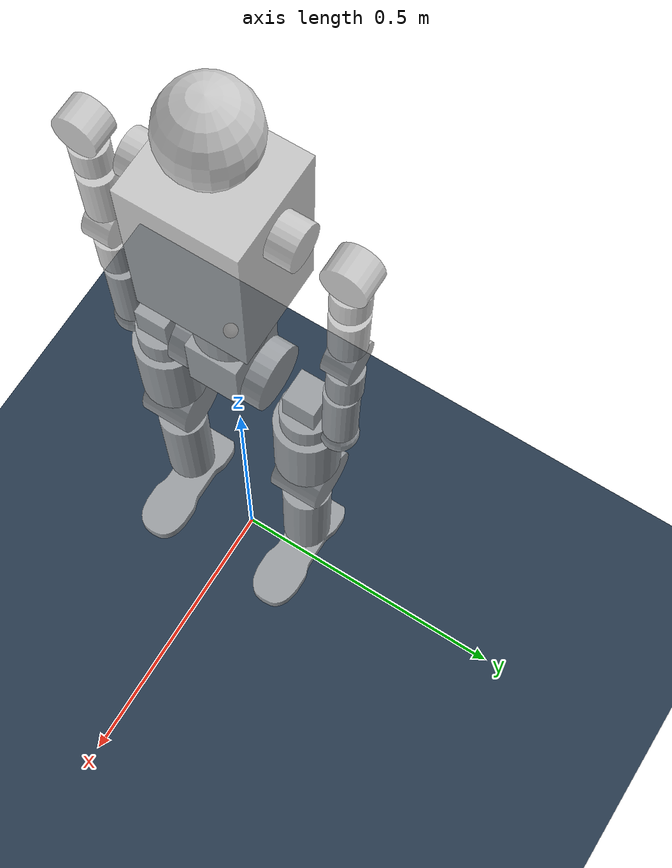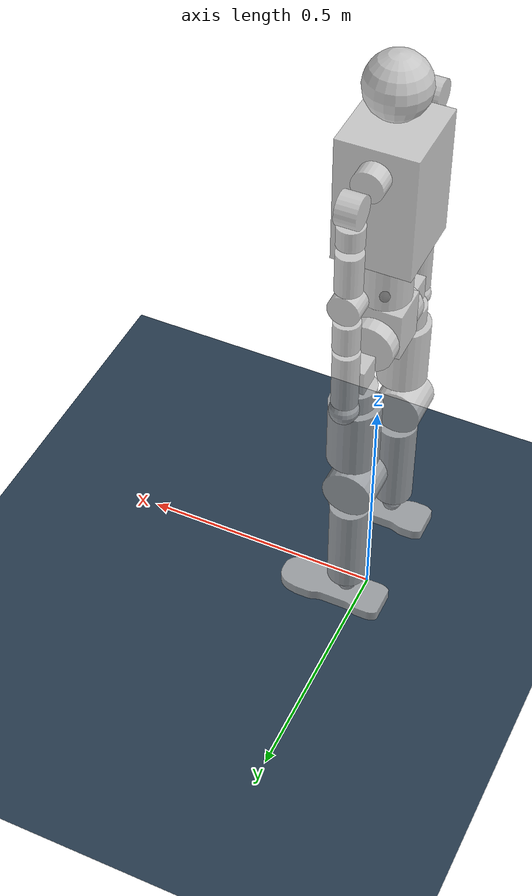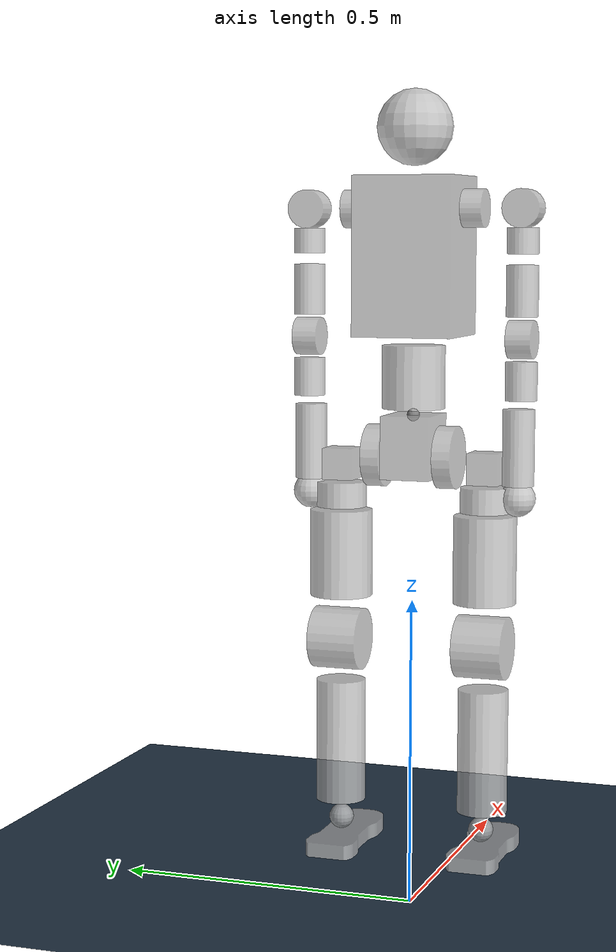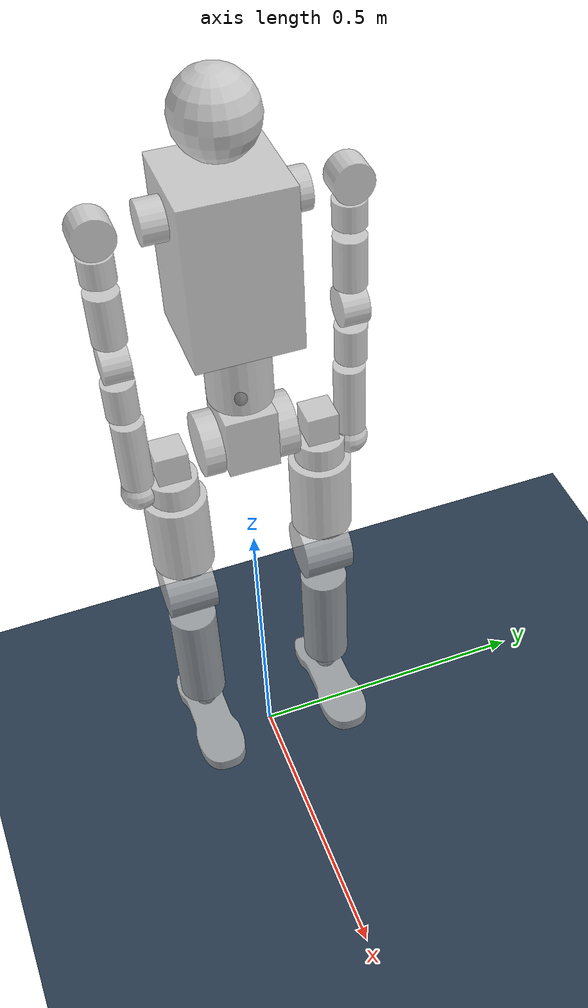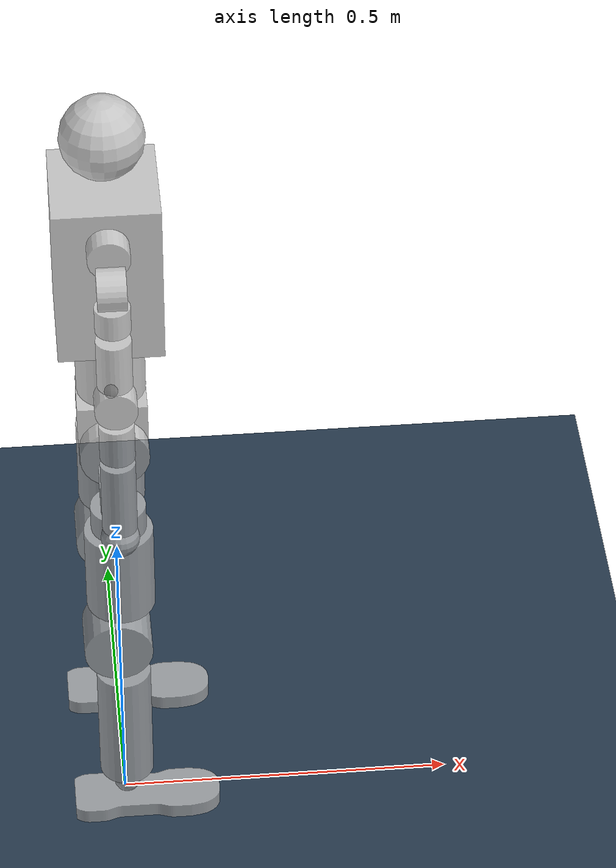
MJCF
<mujoco model="T4">
  <compiler angle="radian" meshdir="../meshes/"/>
  <option timestep="0.0005" tolerance="1e-10" solver="Newton" jacobian="dense" cone="pyramidal" gravity="0 0 -9.81" integrator="RK4">
    <!--integrator="RK4" iteration="50"-->
    <flag contact="enable" energy="enable" />
  </option>
  <size njmax="500" nconmax="1000" />
  <default>
    <joint damping="0.05" armature="0.01" frictionloss="0.1"/>
  </default>
  <asset>
    <texture type="skybox" builtin="gradient" rgb1="0.3 0.5 0.7" rgb2="0 0 0" width="512" height="512"/>
    <texture name="texplane" type="2d" builtin="checker" rgb1=".2 .3 .4" rgb2=".1 0.15 0.2" width="512" height="512" mark="cross" markrgb=".8 .8 .8"/>
    <material name="matplane" reflectance="0.3" texture="texplane" texrepeat="1 1" texuniform="true"/>
    <mesh name="left_foot" file="left_foot.STL" scale="0.001 0.001 0.001"/>
    <mesh name="right_foot" file="right_foot.STL" scale="0.001 0.001 0.001"/>
  </asset>
  <worldbody>
    <light directional="true" diffuse=".4 .4 .4" specular="0.1 0.1 0.1" pos="0 0 5.0" dir="0 0 -1" castshadow="false" />
    <light directional="true" diffuse=".6 .6 .6" specular="0.2 0.2 0.2" pos="0 0 4" dir="0 0 -1" />
    <geom name="ground" type="plane" pos="0 0 0" size="0 0 1" material="matplane" condim="1"/>
    <body name="Trunk" pos="0 0 0.8">
      <inertial pos="-0.0029485 0.0027285 0.243858" quat="0.999233 -0.00275381 -0.0144295 -0.0363026" mass="11.656" diaginertia="0.220858 0.208282 0.0611374"/>
      <site name='imu' size='0.01' pos='0.0 0.0 0.0' />
      <joint type="free"/>
      <geom size="0.075 0.08 0.125" pos="0 0 0.25" type="box" contype="0" conaffinity="0" group="1" density="0" rgba="0.76 0.76 0.76 0.8"/>
      <geom size="0.05 0.05" pos="0 0 0.06" type="cylinder" contype="0" conaffinity="0" group="1" density="0" rgba="0.76 0.76 0.76 0.8"/>
      <geom size="0.06" pos="0 0 0.45" contype="0" conaffinity="0" group="1" density="0" rgba="0.76 0.76 0.76 0.8"/>
      <geom size="0.05 0.05" pos="0 0 0.06" type="cylinder" rgba="0.76 0.76 0.76 0.8"/>
      <body name="AL1" pos="0 0.0945 0.324">
        <inertial pos="0.0021514 0.0684657 0.000933" quat="0.382993 0.363671 -0.591223 0.609521" mass="0.5751" diaginertia="0.000643412 0.000628017 0.000339571"/>
        <joint name="J_arm_l_01" pos="0 0 0" axis="0 1 0" range="-3.4 1.186" actuatorfrcrange="-25 25"/>
        <geom size="0.03 0.02" quat="0.707388 0.706825 0 0" type="cylinder" contype="0" conaffinity="0" group="1" density="0" rgba="0.76 0.76 0.76 0.8"/>
        <geom size="0.03 0.02" pos="0 0.08 0" quat="0.707388 0 0.706825 0" type="cylinder" contype="0" conaffinity="0" group="1" density="0" rgba="0.76 0.76 0.76 0.8"/>
        <body name="AL2" pos="0 0.08 0">
          <inertial pos="0.001752 0.0001277 -0.0377904" quat="0.70016 -0.0988755 -0.0988755 0.70016" mass="0.202" diaginertia="0.000397 0.00031534 0.00023266"/>
          <joint name="J_arm_l_02" pos="0 0 0" axis="1 0 0" range="-0.174 3.228" actuatorfrcrange="-25 25"/>
          <geom size="0.025 0.02" pos="0 0 -0.05" type="cylinder" contype="0" conaffinity="0" group="1" density="0" rgba="0.76 0.76 0.76 0.8"/>
          <body name="AL3" pos="0 0 -0.087">
            <inertial pos="-0.0009466 -0.0026737 -0.0728228" quat="0.937768 -0.000276965 -0.00345712 0.347246" mass="1.0108" diaginertia="0.00244537 0.00222072 0.000583912"/>
            <joint name="J_arm_l_03" pos="0 0 0" axis="0 0 1" range="-2.617 2.617" actuatorfrcrange="-25 25"/>
            <geom size="0.025 0.04" pos="0 0 -0.04" type="cylinder" contype="0" conaffinity="0" group="1" density="0" rgba="0.76 0.76 0.76 0.8"/>
            <geom size="0.03 0.02" pos="0 0 -0.115" quat="0.707388 0.706825 0 0" type="cylinder" contype="0" conaffinity="0" group="1" density="0" rgba="0.76 0.76 0.76 0.8"/>
            <body name="AL4" pos="0 0 -0.115">
              <inertial pos="-0.0005424 0.0004743 -0.0714696" quat="0.938613 0.0082015 0.00841846 0.344773" mass="0.5074" diaginertia="0.000643502 0.000420606 0.000267893"/>
              <joint name="J_arm_l_04" pos="0 0 0" axis="0 1 0" range="-2 0.034" actuatorfrcrange="-25 25"/>
              <geom size="0.025 0.03" pos="0 0 -0.065" type="cylinder" contype="0" conaffinity="0" group="1" density="0" rgba="0.76 0.76 0.76 0.8"/>
              <body name="AL5" pos="0 -0.003 -0.109">
                <inertial pos="-0.000387 -2.85e-05 -0.0734175" mass="0.2754" diaginertia="0.000917328 0.000916686 0.000133118"/>
                <joint name="J_arm_l_05" pos="0 0 0" axis="0 0 1" range="-2.617 2.617" actuatorfrcrange="-25 25"/>
                <geom size="0.025 0.06" pos="0 0 -0.06" type="cylinder" contype="0" conaffinity="0" group="1" density="0" rgba="0.76 0.76 0.76 0.8"/>
                <geom size="0.028" pos="0 0 -0.1405" contype="0" conaffinity="0" group="1" density="0" rgba="0.76 0.76 0.76 0.8"/>
              </body>
            </body>
          </body>
        </body>
      </body>
      <body name="AR1" pos="0 -0.0945 0.324">
        <inertial pos="0.0021514 -0.0684657 0.000933" quat="0.363671 0.382993 -0.609521 0.591223" mass="0.5751" diaginertia="0.000643412 0.000628017 0.000339571"/>
        <joint name="J_arm_r_01" pos="0 0 0" axis="0 1 0" range="-3.4 1.186" actuatorfrcrange="-25 25"/>
        <geom size="0.03 0.02" quat="0.707388 0.706825 0 0" type="cylinder" contype="0" conaffinity="0" group="1" density="0" rgba="0.76 0.76 0.76 0.8"/>
        <geom size="0.03 0.02" pos="0 -0.08 0" quat="0.707388 0 0.706825 0" type="cylinder" contype="0" conaffinity="0" group="1" density="0" rgba="0.76 0.76 0.76 0.8"/>
        <body name="AR2" pos="0 -0.08 0">
          <inertial pos="0.001752 -0.0001277 -0.0377904" quat="0.70016 -0.0988755 -0.0988755 0.70016" mass="0.202" diaginertia="0.000397 0.00031534 0.00023266"/>
          <joint name="J_arm_r_02" pos="0 0 0" axis="1 0 0" range="-3.228 0.174" actuatorfrcrange="-25 25"/>
          <geom size="0.025 0.02" pos="0 0 -0.05" type="cylinder" contype="0" conaffinity="0" group="1" density="0" rgba="0.76 0.76 0.76 0.8"/>
          <body name="AR3" pos="0 0 -0.087">
            <inertial pos="-0.0009466 0.0026737 -0.0728228" quat="0.937768 0.000276965 -0.00345712 -0.347246" mass="1.0108" diaginertia="0.00244537 0.00222072 0.000583912"/>
            <joint name="J_arm_r_03" pos="0 0 0" axis="0 0 1" range="-2.617 2.617" actuatorfrcrange="-25 25"/>
            <geom size="0.025 0.04" pos="0 0 -0.04" type="cylinder" contype="0" conaffinity="0" group="1" density="0" rgba="0.76 0.76 0.76 0.8"/>
            <geom size="0.03 0.02" pos="0 0 -0.115" quat="0.707388 0.706825 0 0" type="cylinder" contype="0" conaffinity="0" group="1" density="0" rgba="0.76 0.76 0.76 0.8"/>
            <body name="AR4" pos="0 0 -0.115">
              <inertial pos="-0.0005424 -0.0004743 -0.0714696" quat="0.938613 -0.0082015 0.00841846 -0.344773" mass="0.5074" diaginertia="0.000643502 0.000420606 0.000267893"/>
              <joint name="J_arm_r_04" pos="0 0 0" axis="0 1 0" range="-2 0.034" actuatorfrcrange="-25 25"/>
              <geom size="0.025 0.03" pos="0 0 -0.065" type="cylinder" contype="0" conaffinity="0" group="1" density="0" rgba="0.76 0.76 0.76 0.8"/>
              <body name="AR5" pos="0 0.003 -0.109">
                <inertial pos="-0.000387 2.85e-05 -0.0734175" mass="0.2754" diaginertia="0.000917328 0.000916686 0.000133118"/>
                <joint name="J_arm_r_05" pos="0 0 0" axis="0 0 1" range="-2.617 2.617" actuatorfrcrange="-25 25"/>
                <geom size="0.025 0.06" pos="0 0 -0.06" type="cylinder" contype="0" conaffinity="0" group="1" density="0" rgba="0.76 0.76 0.76 0.8"/>
                <geom size="0.028" pos="0 0 -0.1405" contype="0" conaffinity="0" group="1" density="0" rgba="0.76 0.76 0.76 0.8"/>
              </body>
            </body>
          </body>
        </body>
      </body>
      <body name="Waist">
        <inertial pos="6.1e-06 0 -0.060228" quat="0.707107 0.707107 -0.00045797 0.00045797" mass="3.0798" diaginertia="0.007956 0.007184 0.006469"/>
        <joint name="J_waist_yaw" pos="0 0 0" axis="0 0 1" range="-1.01 1.01" actuatorfrcrange="-60 60"/>
        <geom size="0.05 0.04 0.05" pos="0 0 -0.05" type="box" contype="0" conaffinity="0" group="1" density="0" rgba="0.76 0.76 0.76 0.8"/>
        <body name="Hip_Pitch_Left" pos="0 0.0585 -0.066">
          <inertial pos="-0.0006032 -0.0522418 -0.0123757" quat="0.706048 0.703928 -0.0162653 0.0756115" mass="1.0332" diaginertia="0.00144183 0.00125998 0.000900188"/>
          <joint name="J_hip_l_pitch" pos="0 0 0" axis="0 1 0" range="-2 2" actuatorfrcrange="-130 130"/>
          <geom size="0.05 0.015" quat="0.707388 0.706825 0 0" type="cylinder" contype="0" conaffinity="0" group="1" density="0" rgba="0.76 0.76 0.76 0.8"/>
          <body name="Hip_Roll_Left" pos="0 0.061 -0.0155">
            <inertial pos="-0.0032464 -8.46e-05 -0.0482163" quat="0.559652 0.432192 0.432192 0.559652" mass="0.4228" diaginertia="0.000834 0.000668021 0.000479979"/>
            <joint name="J_hip_l_roll" pos="0 0 0" axis="1 0 0" range="-0.26 1.53" actuatorfrcrange="-120 120"/>
            <geom size="0.025 0.025 0.025" type="box" contype="0" conaffinity="0" group="1" density="0" rgba="0.76 0.76 0.76 0.8"/>
            <geom size="0.04 0.02" pos="0 0 -0.05" type="cylinder" contype="0" conaffinity="0" group="1" density="0" rgba="0.76 0.76 0.76 0.8"/>
            <body name="Hip_Yaw_Left" pos="-0.0005 0 -0.075">
              <inertial pos="-0.0027038 0.0003846 -0.134993" quat="0.637492 -0.0104266 -0.00860767 0.770339" mass="2.5647" diaginertia="0.0192065 0.018907 0.00323053"/>
              <joint name="J_hip_l_yaw" pos="0 0 0" axis="0 0 1" range="-1 1" actuatorfrcrange="-60 60"/>
              <geom size="0.05 0.07" pos="0 0 -0.07" type="cylinder" contype="0" conaffinity="0" group="1" density="0" rgba="0.76 0.76 0.76 0.8"/>
              <geom size="0.05 0.04" pos="-0.007 0 -0.2095" quat="0.707141 0.707073 0 0" type="cylinder" contype="0" conaffinity="0" group="1" density="0" rgba="0.76 0.76 0.76 0.8"/>
              <body name="Shank_Left" pos="-0.007 0 -0.2095">
                <inertial pos="0.0061751 0.0010982 -0.123002" quat="0.421008 -0.02588 -0.0116454 0.906613" mass="2.085" diaginertia="0.0133157 0.0132539 0.00251033"/>
                <joint name="J_knee_l_pitch" pos="0 0 0" axis="0 1 0" range="0 2.26" actuatorfrcrange="-130 130"/>
                <geom size="0.04 0.1" pos="0.007 0 -0.17" type="cylinder" contype="0" conaffinity="0" group="1" density="0" rgba="0.76 0.76 0.76 0.8"/>
                <body name="Ankle_Cross_Left" pos="0.007 -0.0015 -0.3">
                  <inertial pos="0 0 0" mass="0.05" diaginertia="2e-05 2e-05 2e-05"/>
                  <joint name="J_ankle_l_pitch" pos="0 0 0" axis="0 1 0" range="-0.87 0.35" actuatorfrcrange="-72 72"/>
                  <geom size="0.02" contype="0" conaffinity="0" group="1" density="0" rgba="0.76 0.76 0.76 0.8"/>
                  <body name="left_foot_link">
                    <inertial pos="0.0198743 0 -0.0279436" quat="0 0.692985 0 0.720952" mass="0.7981" diaginertia="0.00329811 0.00311195 0.000474942"/>
                    <joint name="J_ankle_l_roll" pos="0 0 0" axis="1 0 0" range="-0.44 0.44" actuatorfrcrange="-36 36"/>
                    <geom pos="0 0 -0.035" quat="1 0 0 0" type="mesh" contype="0" conaffinity="0" group="1" density="0" rgba="0.76 0.76 0.76 0.8" mesh="left_foot"/>
                    <geom pos="0 0 -0.035" quat="1 0 0 0" type="mesh" rgba="0.76 0.76 0.76 0.8" mesh="left_foot"/>
                  </body>
                </body>
              </body>
            </body>
          </body>
        </body>
        <body name="Hip_Pitch_Right" pos="0 -0.0585 -0.066">
          <inertial pos="-0.0006032 0.0522418 -0.0123757" quat="0.703928 0.706048 -0.0756115 0.0162653" mass="1.0332" diaginertia="0.00144183 0.00125998 0.000900188"/>
          <joint name="J_hip_r_pitch" pos="0 0 0" axis="0 1 0" range="-2 2" actuatorfrcrange="-130 130"/>
          <geom size="0.05 0.015" quat="0.707388 0.706825 0 0" type="cylinder" contype="0" conaffinity="0" group="1" density="0" rgba="0.76 0.76 0.76 0.8"/>
          <body name="Hip_Roll_Right" pos="0 -0.061 -0.0155">
            <inertial pos="-0.0032464 8.46e-05 -0.0482163" quat="0.559652 0.432192 0.432192 0.559652" mass="0.4228" diaginertia="0.000834 0.000668021 0.000479979"/>
            <joint name="J_hip_r_roll" pos="0 0 0" axis="1 0 0" range="-1.53 0.26" actuatorfrcrange="-120 120"/>
            <geom size="0.025 0.025 0.025" type="box" contype="0" conaffinity="0" group="1" density="0" rgba="0.76 0.76 0.76 0.8"/>
            <geom size="0.04 0.02" pos="0 0 -0.05" type="cylinder" contype="0" conaffinity="0" group="1" density="0" rgba="0.76 0.76 0.76 0.8"/>
            <body name="Hip_Yaw_Right" pos="-0.0005 0 -0.075">
              <inertial pos="-0.0027038 -0.0003846 -0.134993" quat="0.770339 -0.00860767 -0.0104266 0.637492" mass="2.5647" diaginertia="0.0192065 0.018907 0.00323053"/>
              <joint name="J_hip_r_yaw" pos="0 0 0" axis="0 0 1" range="-1 1" actuatorfrcrange="-60 60"/>
              <geom size="0.05 0.07" pos="0 0 -0.07" type="cylinder" contype="0" conaffinity="0" group="1" density="0" rgba="0.76 0.76 0.76 0.8"/>
              <geom size="0.05 0.04" pos="-0.007 0 -0.2095" quat="0.707141 0.707073 0 0" type="cylinder" contype="0" conaffinity="0" group="1" density="0" rgba="0.76 0.76 0.76 0.8"/>
              <body name="Shank_Right" pos="-0.007 0 -0.2095">
                <inertial pos="0.0061751 -0.0010982 -0.123002" quat="0.906613 -0.0116454 -0.02588 0.421008" mass="2.085" diaginertia="0.0133157 0.0132539 0.00251033"/>
                <joint name="J_knee_r_pitch" pos="0 0 0" axis="0 1 0" range="0 2.26" actuatorfrcrange="-130 130"/>
                <geom size="0.04 0.1" pos="0.007 0 -0.17" type="cylinder" contype="0" conaffinity="0" group="1" density="0" rgba="0.76 0.76 0.76 0.8"/>
                <body name="Ankle_Cross_Right" pos="0.007 0.0015 -0.3">
                  <inertial pos="0 0 0" mass="0.05" diaginertia="2e-05 2e-05 2e-05"/>
                  <joint name="J_ankle_r_pitch" pos="0 0 0" axis="0 1 0" range="-0.87 0.35" actuatorfrcrange="-72 72"/>
                  <geom size="0.02" contype="0" conaffinity="0" group="1" density="0" rgba="0.76 0.76 0.76 0.8"/>
                  <body name="right_foot_link">
                    <inertial pos="0.0198743 0 -0.0279436" quat="0 0.692985 0 0.720952" mass="0.7981" diaginertia="0.00329811 0.00311195 0.000474942"/>
                    <joint name="J_ankle_r_roll" pos="0 0 0" axis="1 0 0" range="-0.44 0.44" actuatorfrcrange="-36 36"/>
                    <geom pos="0 0 -0.035" quat="1 0 0 0" type="mesh" contype="0" conaffinity="0" group="1" density="0" rgba="0.76 0.76 0.76 0.8" mesh="right_foot"/>
                    <geom pos="0 0 -0.035" quat="1 0 0 0" type="mesh" rgba="0.76 0.76 0.76 0.8" mesh="right_foot"/>
                  </body>
                </body>
              </body>
            </body>
          </body>
        </body>
      </body>
    </body>
  </worldbody>
  <actuator>
    <motor name="M_arm_l_01" joint="J_arm_l_01" ctrlrange="-25.0 25.0" ctrllimited="true" />
    <motor name="M_arm_l_02" joint="J_arm_l_02" ctrlrange="-25.0 25.0" ctrllimited="true" />
    <motor name="M_arm_l_03" joint="J_arm_l_03" ctrlrange="-25.0 25.0" ctrllimited="true" />
    <motor name="M_arm_l_04" joint="J_arm_l_04" ctrlrange="-25.0 25.0" ctrllimited="true" />
    <motor name="M_arm_l_05" joint="J_arm_l_05" ctrlrange="-25.0 25.0" ctrllimited="true" />
    <motor name="M_arm_r_01" joint="J_arm_r_01" ctrlrange="-25.0 25.0" ctrllimited="true" />
    <motor name="M_arm_r_02" joint="J_arm_r_02" ctrlrange="-25.0 25.0" ctrllimited="true" />
    <motor name="M_arm_r_03" joint="J_arm_r_03" ctrlrange="-25.0 25.0" ctrllimited="true" />
    <motor name="M_arm_r_04" joint="J_arm_r_04" ctrlrange="-25.0 25.0" ctrllimited="true" />
    <motor name="M_arm_r_05" joint="J_arm_r_05" ctrlrange="-25.0 25.0" ctrllimited="true" />
    <motor name="M_waist_yaw" joint="J_waist_yaw" ctrlrange="-60.0 60.0" ctrllimited="true" />
    <motor name="M_hip_l_pitch" joint="J_hip_l_pitch" ctrlrange="-130.0 130.0" ctrllimited="true" />
    <motor name="M_hip_l_roll" joint="J_hip_l_roll" ctrlrange="-120.0 120.0" ctrllimited="true" />
    <motor name="M_hip_l_yaw" joint="J_hip_l_yaw" ctrlrange="-60.0 60.0" ctrllimited="true" />
    <motor name="M_knee_l_pitch" joint="J_knee_l_pitch" ctrlrange="-130.0 130.0" ctrllimited="true" />
    <motor name="M_ankle_l_pitch" joint="J_ankle_l_pitch" ctrlrange="-72.0 72.0" ctrllimited="true" />
    <motor name="M_ankle_l_roll" joint="J_ankle_l_roll" ctrlrange="-36.0 36.0" ctrllimited="true" />
    <motor name="M_hip_r_pitch" joint="J_hip_r_pitch" ctrlrange="-130.0 130.0" ctrllimited="true" />
    <motor name="M_hip_r_roll" joint="J_hip_r_roll" ctrlrange="-120.0 120.0" ctrllimited="true" />
    <motor name="M_hip_r_yaw" joint="J_hip_r_yaw" ctrlrange="-60.0 60.0" ctrllimited="true" />
    <motor name="M_knee_r_pitch" joint="J_knee_r_pitch" ctrlrange="-130.0 130.0" ctrllimited="true" />
    <motor name="M_ankle_r_pitch" joint="J_ankle_r_pitch" ctrlrange="-72.0 72.0" ctrllimited="true" />
    <motor name="M_ankle_r_roll" joint="J_ankle_r_roll" ctrlrange="-36.0 36.0" ctrllimited="true" />
  </actuator>
  <sensor>
    <gyro name='base_ang_vel' site='imu' noise='0.005' cutoff='34.9'/>
    <framequat name="orientation" objtype="site" noise="0.001" objname="imu" />
    <gyro name="angular-velocity" site="imu" noise="0.005" />
  </sensor>
</mujoco>
